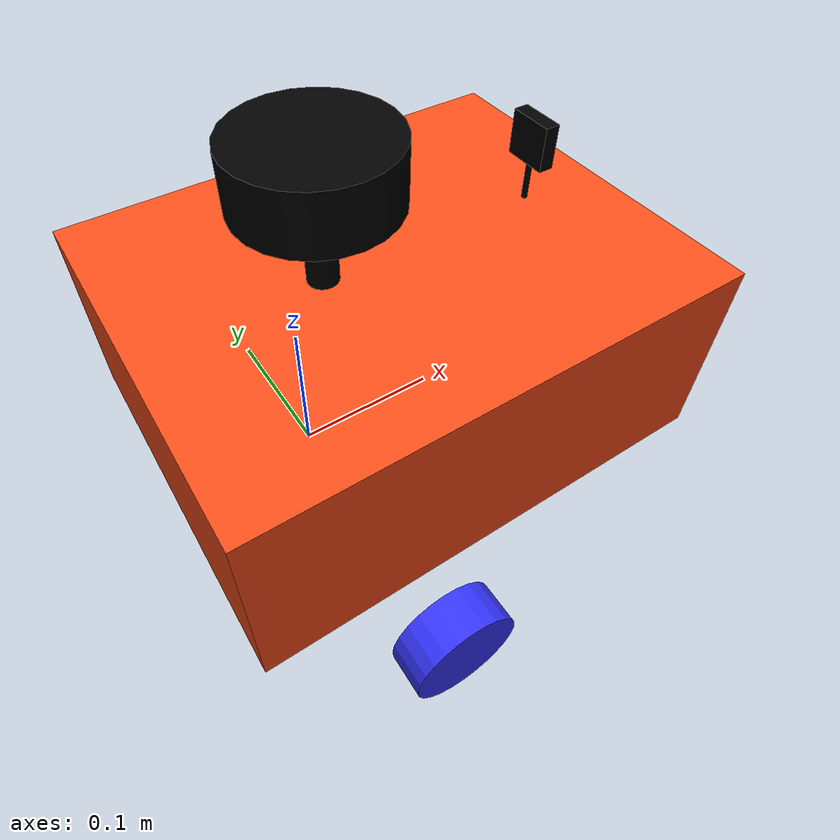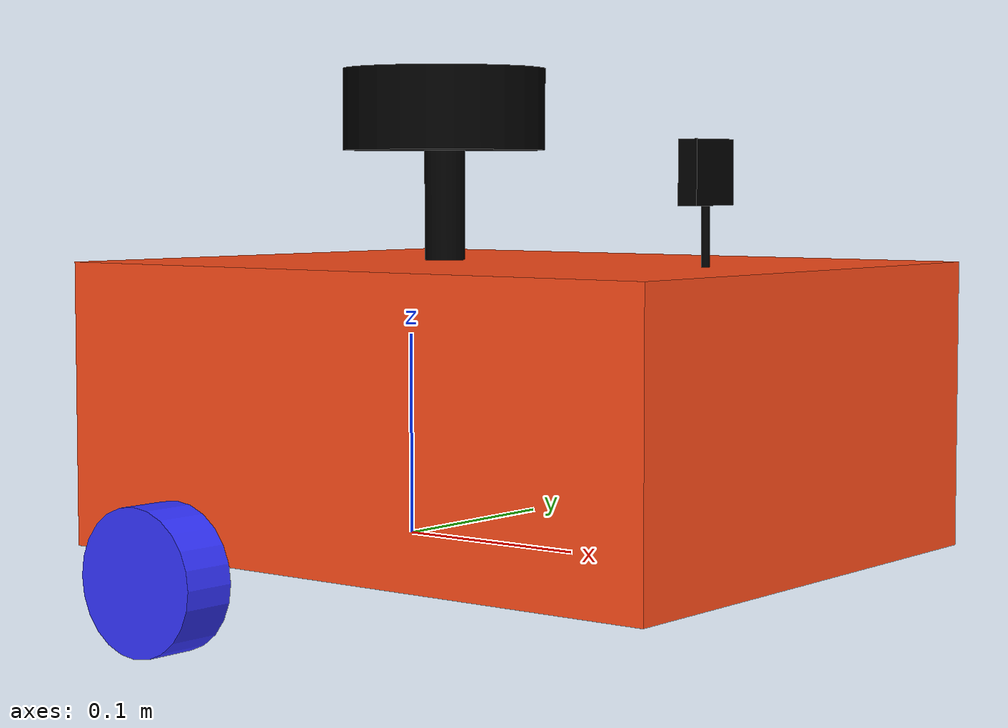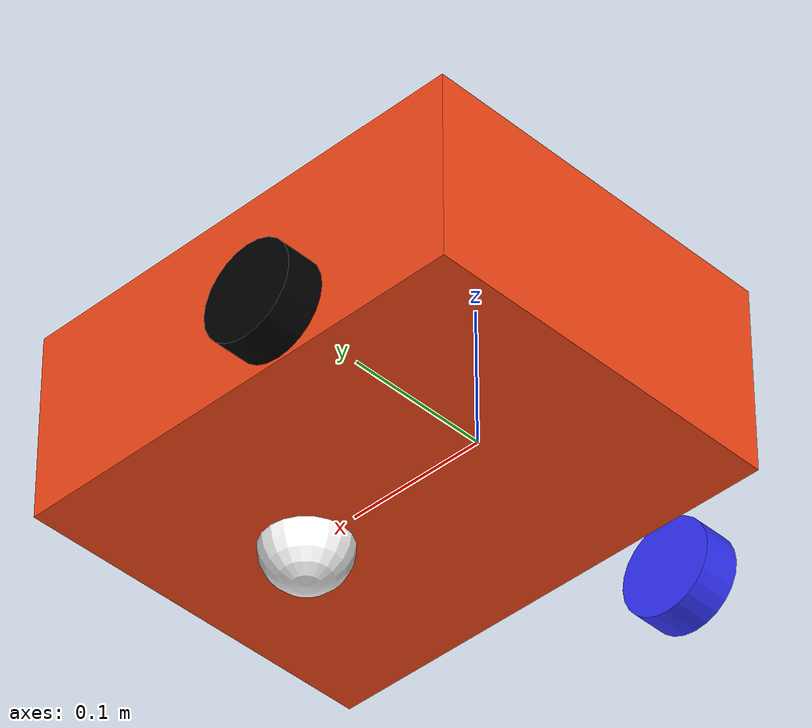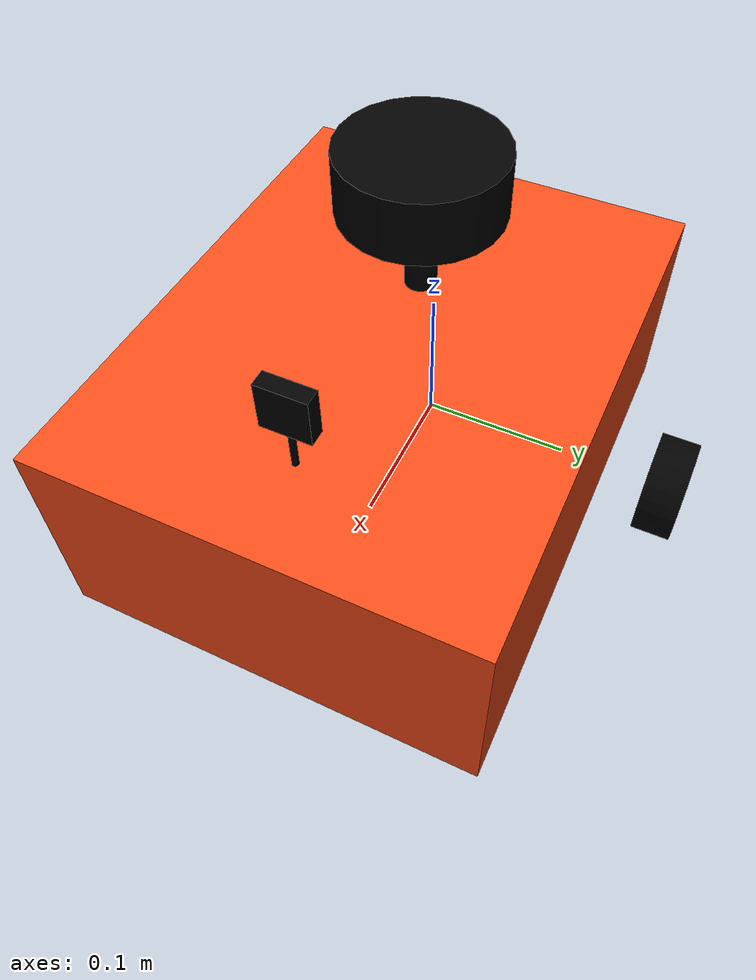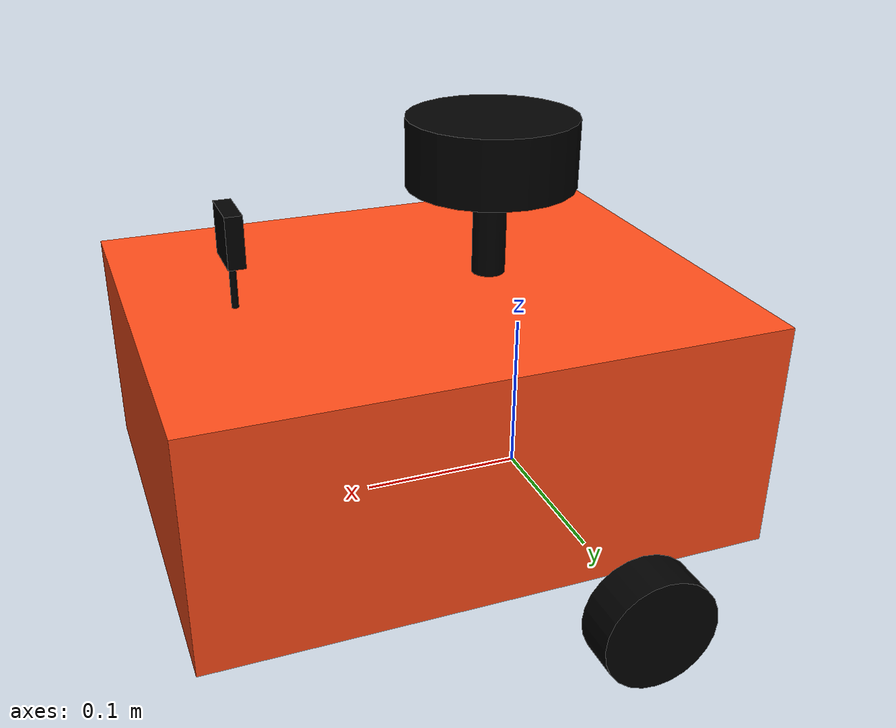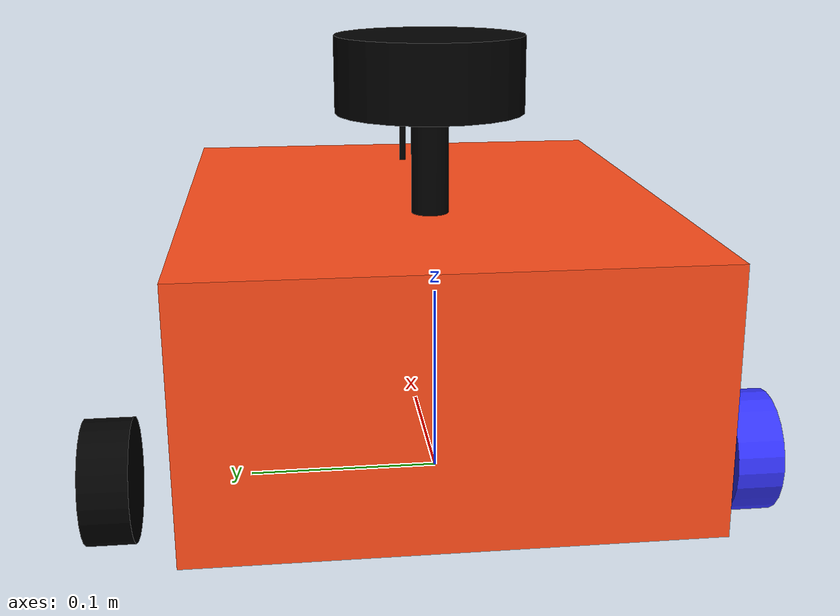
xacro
<?xml version="1.0"?>
<robot xmlns:xacro="http://www.ros.org/wiki/xacro"  name="robot">

    <xacro:arg name="use_ros2_control" default="true"/>

    <xacro:include filename="robot_core.xacro" />

    <xacro:if value="$(arg use_ros2_control)">
        <xacro:include filename="ros2_control.xacro"/>
    </xacro:if>
    <xacro:unless value="$(arg use_ros2_control)">
        <xacro:include filename="gazebo_control.xacro"/>
    </xacro:unless>

    <xacro:include filename="lidar.xacro"/>
    <xacro:include filename="camera.xacro"/>

</robot>

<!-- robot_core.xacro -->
<robot xmlns:xacro="http://www.ros.org/wiki/xacro">

    <xacro:include filename="inertial_macros.xacro"/>

    <xacro:property name="chassis_length" value="0.335"/>
    <xacro:property name="chassis_width" value="0.265"/>
    <xacro:property name="chassis_height" value="0.138"/>
    <xacro:property name="chassis_mass" value="1.0"/>
    <xacro:property name="wheel_radius" value="0.034"/>
    <xacro:property name="wheel_thickness" value="0.026"/>
    <xacro:property name="wheel_mass" value="0.05"/>
    <xacro:property name="caster_wheel_radius" value="0.03"/>
    <xacro:property name="caster_wheel_mass" value="0.01"/>

    <material name="black">
        <color rgba="0 0 0 1"/>
    </material>
    <material name="white">
        <color rgba="1 1 1 1"/>
    </material>
    <material name="orange">
        <color rgba="1 0.3 0.1 1"/>
    </material>
    <material name="blue">
        <color rgba="0.2 0.2 1 1"/>
    </material>
    <material name="red">
        <color rgba="1 0 0 1"/>
    </material>

    <!-- base link-->
    <link name ="base_link">

    </link>

    <!-- chassis link-->
    <joint name="chassis_joint" type="fixed">
        <parent link="base_link"/>
        <child link="chassis"/>
        <origin xyz="-0.1 0 0"/>
    </joint>

    <link name="chassis">
        <visual>
            <origin xyz="${chassis_length/2} 0 ${chassis_height/2}"/>
            <geometry>
                <box size="${chassis_length} ${chassis_width} ${chassis_height}"/>
            </geometry>
            <material name="orange"/>
        </visual>
        <collision>
            <origin xyz="${chassis_length/2} 0 ${chassis_height/2}"/>
            <geometry>
                <box size="${chassis_length} ${chassis_width} ${chassis_height}"/>
            </geometry>
            <material name="orange"/>
        </collision>
        <xacro:inertial_box mass="0.5" x="${chassis_length}" y="${chassis_width}" z="${chassis_height}">
            <origin xyz="${chassis_length/2} 0 ${chassis_height/2}" rpy="0 0 0"/>
        </xacro:inertial_box>
    </link>

    <gazebo reference="chassis">
        <material>Gazebo/Orange</material>
    </gazebo>

    <!-- left wheel link-->
    <joint name="left_wheel_joint" type="continuous">
        <origin xyz="0 0.175 0" rpy="-${pi/2} 0 0"/>
        <parent link="base_link"/>
        <child link="left_wheel"/>
        <axis xyz="0 0 1"/>
    </joint>
    <link name="left_wheel">
        <visual>
            <geometry>
                <cylinder radius="${wheel_radius}" length="${wheel_thickness}"/>
            </geometry>
            <material name="black"/>
        </visual>
        <collision>
            <geometry>
                <sphere radius="${wheel_radius}"/>
            </geometry>
            <material name="black"/>
        </collision>
        <xacro:inertial_cylinder mass="${wheel_mass}" length="${wheel_thickness}" radius="${wheel_radius}">
            <origin xyz="0 0 0" rpy="0 0 0 "/>
        </xacro:inertial_cylinder>

    </link>
    <gazebo reference="left_wheel">
        <material>Gazebo/Black</material>
    </gazebo>
    <!-- right wheel link-->
    <joint name="right_wheel_joint" type="continuous">
        <origin xyz="0 -0.175 0" rpy="${pi/2} 0 0"/>
        <parent link="base_link"/>
        <child link="right_wheel"/>
        <axis xyz="0 0 -1"/>
    </joint>
    <link name="right_wheel">
        <visual>
            <geometry>
                <cylinder radius="${wheel_radius}" length="${wheel_thickness}"/>
            </geometry>
            <material name="blue"/>
        </visual>
        <collision>
            <geometry>
                <sphere radius="${wheel_radius}"/>
            </geometry>
        </collision>
        <xacro:inertial_cylinder mass="${wheel_mass}" length="${wheel_thickness}" radius="${wheel_radius}">
            <origin xyz="0 0 0" rpy="0 0 0"/>
        </xacro:inertial_cylinder>
    </link>

    <gazebo reference="right_wheel">
        <material>Gazebo/Black</material>
    </gazebo>

    <!-- caster wheel link -->
     <joint name="caster_wheel_joint" type="fixed">
        <origin xyz="0.24 0 0"/>
        <parent link="chassis"/>
        <child link="caster_wheel"/>
    </joint>
    <link name="caster_wheel">
        <visual>
            <geometry>
                <sphere radius="${caster_wheel_radius}"/>
            </geometry>
            <material name="white"/>
        </visual>
        <collision>
            <geometry>
                <sphere radius="${caster_wheel_radius}"/>
            </geometry>
        </collision>
        <xacro:inertial_sphere mass="${caster_wheel_mass}" radius="${caster_wheel_radius}">
            <origin xyz="0 0 0" rpy="0 0 0"/>
        </xacro:inertial_sphere>
    </link>

    <gazebo reference="caster_wheel">
        <material>Gazebo/White</material>
        <mu1 value="0.001"/>
        <mu2 value="0.001"/>
    </gazebo>

</robot>

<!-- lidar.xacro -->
<robot xmlns:xacro="http://www.ros.org/wiki/xacro">

    <!-- lidar link -->
     <joint name="laser_joint" type="fixed">
        <parent link="chassis"/>
        <child link="laser_frame"/>
        <origin xyz="0.122 0 0.212" rpy="0 0 0"/>

    </joint>
    <link name="laser_frame">
        <visual>
            <geometry>
                <cylinder radius="0.05" length="0.04"/>
            </geometry>
            <material name="black"/>
        </visual>
        <visual>
            <origin xyz="0 0 -0.05"/>
            <geometry>
                <cylinder radius="0.01" length="0.1"/>
            </geometry>
            <material name="black"/>
        </visual>
        <collision>
            <geometry>
                <cylinder radius="0.05" length="0.04"/>
            </geometry>
        </collision>
        <xacro:inertial_cylinder mass="0.1" length="0.04" radius="0.05">
            <origin xyz="0 0 0" rpy="0 0 0 "/>
        </xacro:inertial_cylinder>
    </link>

    <gazebo reference="laser_frame">
        <material>Gazebo/Black</material>
        <sensor name="laser" type="ray">
            <pose>0 0 0 0 0 o</pose>
            <visualize>false</visualize>
            <update_rate>10</update_rate>
            <ray>
                <scan>
                    <horizontal>
                        <samples>360</samples>
                        <resolution>1</resolution>
                        <min_angle>-3.14</min_angle>
                        <max_angle>3.14</max_angle>
                    </horizontal>
                </scan>
                <range>
                    <min>0.3</min>
                    <max>12</max>
                    <resolution>0.01</resolution>
                </range>
            </ray>
            <plugin name="laser_control" filename="libgazebo_ros_ray_sensor.so">
                <ros>
                    <argument>~/out:=scan</argument>
                </ros>
                <output_type>sensor_msgs/LaserScan</output_type>
                <frame_name>laser_frame</frame_name>
            </plugin>
        </sensor>
    </gazebo>
</robot>

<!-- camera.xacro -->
<robot xmlns:xacro="http://www.ros.org/wiki/xacro">

    <!-- camera ros link -->
    <joint name="camera_joint" type="fixed">
        <parent link="chassis"/>
        <child link="camera_link"/>
        <origin xyz="0.276 0 0.181" rpy="0 0 0"/>
    </joint>

    <link name="camera_link">
        <visual>
            <geometry>
                <box size="0.010 0.03 0.03"/>
            </geometry>
            <material name="black"/>
        </visual>
        <visual>
            <origin xyz="0 0 -0.05"/>
            <geometry>
                <cylinder radius="0.002" length="0.1"/>
            </geometry>
            <material name="black"/>
        </visual>
    </link>

    <!-- camera vision system -->
    <joint name="camera_optical_joint" type="fixed">
        <parent link="camera_link"/>
        <child link="camera_link_optical"/>
        <origin xyz="0 0 0" rpy="${-pi/2} 0 ${-pi/2}"/>
    </joint>

    <link name="camera_link_optical"></link>

    <gazebo reference="camera_link">
        <material>Gazebo/Black</material>
        <sensor name="camera" type="camera">
            <pose>0 0 0 0 0 o</pose>
            <visualize>true</visualize>
            <update_rate>10</update_rate>
            <camera>
                <horizontal_fov>1.089</horizontal_fov>
                <image>
                    <width>640</width>
                    <height>480</height>
                    <format>R8G8B8</format>
                </image>
                <clip>
                    <near>0.05</near>
                    <far>8.0</far>
                </clip>
            </camera>
            <plugin name="camera_control" filename="libgazebo_ros_camera.so">
                <frame_name>camera_link_optical</frame_name>
            </plugin>
        </sensor>
    </gazebo>
</robot>
